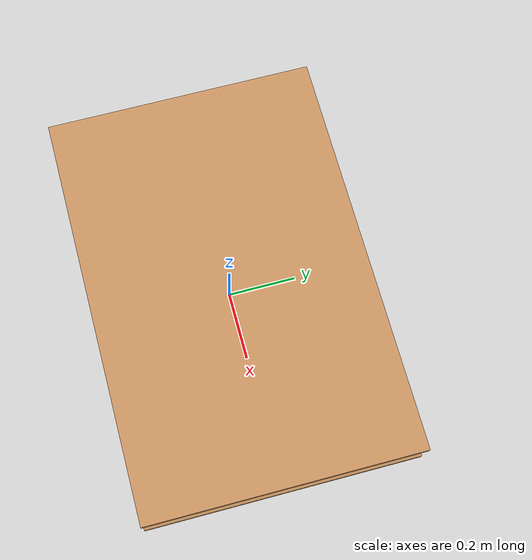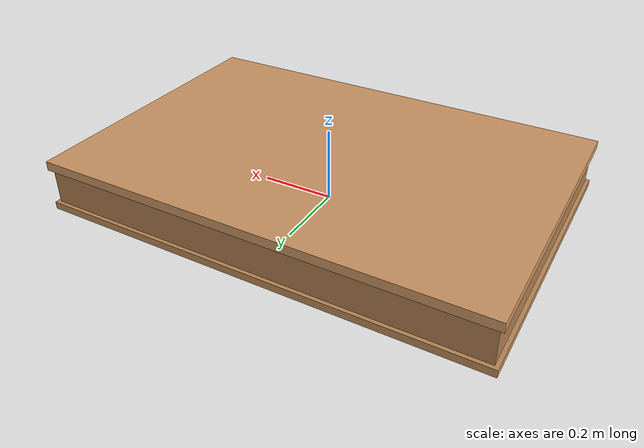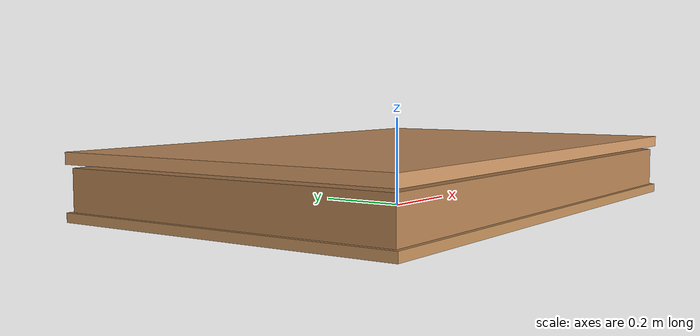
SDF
<?xml version="1.0" ?>
<sdf version="1.6">
  <model name="euro_pallet">
    <static>true</static>
    <link name="pallet_base">
      <!-- Top deck planks -->
      <visual name="top_deck">
        <pose>0 0 0.13 0 0 0</pose>
        <geometry><box><size>1.20 0.80 0.025</size></box></geometry>
        <material>
          <ambient>0.72 0.53 0.35 1.0</ambient>
          <diffuse>0.82 0.60 0.40 1.0</diffuse>
        </material>
      </visual>

      <!-- Center & Side Stringer Blocks (9 blocks) -->
      <visual name="blocks">
        <pose>0 0 0.065 0 0 0</pose>
        <geometry><box><size>1.18 0.78 0.09</size></box></geometry>
        <material>
          <ambient>0.60 0.43 0.28 1.0</ambient>
          <diffuse>0.70 0.50 0.32 1.0</diffuse>
        </material>
      </visual>

      <!-- Bottom deck planks -->
      <visual name="bottom_deck">
        <pose>0 0 0.01 0 0 0</pose>
        <geometry><box><size>1.20 0.80 0.02</size></box></geometry>
        <material>
          <ambient>0.65 0.48 0.30 1.0</ambient>
          <diffuse>0.75 0.55 0.35 1.0</diffuse>
        </material>
      </visual>

      <collision name="col_pallet">
        <pose>0 0 0.072 0 0 0</pose>
        <geometry><box><size>1.20 0.80 0.144</size></box></geometry>
        <surface>
          <friction>
            <ode>
              <mu>0.9</mu>
              <mu2>0.9</mu2>
            </ode>
          </friction>
        </surface>
      </collision>

      <inertial>
        <mass>22.0</mass>
        <pose>0 0 0.072 0 0 0</pose>
        <inertia>
          <ixx>1.20</ixx><ixy>0.0</ixy><ixz>0.0</ixz>
          <iyy>2.65</iyy><iyz>0.0</iyz>
          <izz>3.80</izz>
        </inertia>
      </inertial>
    </link>
  </model>
</sdf>
